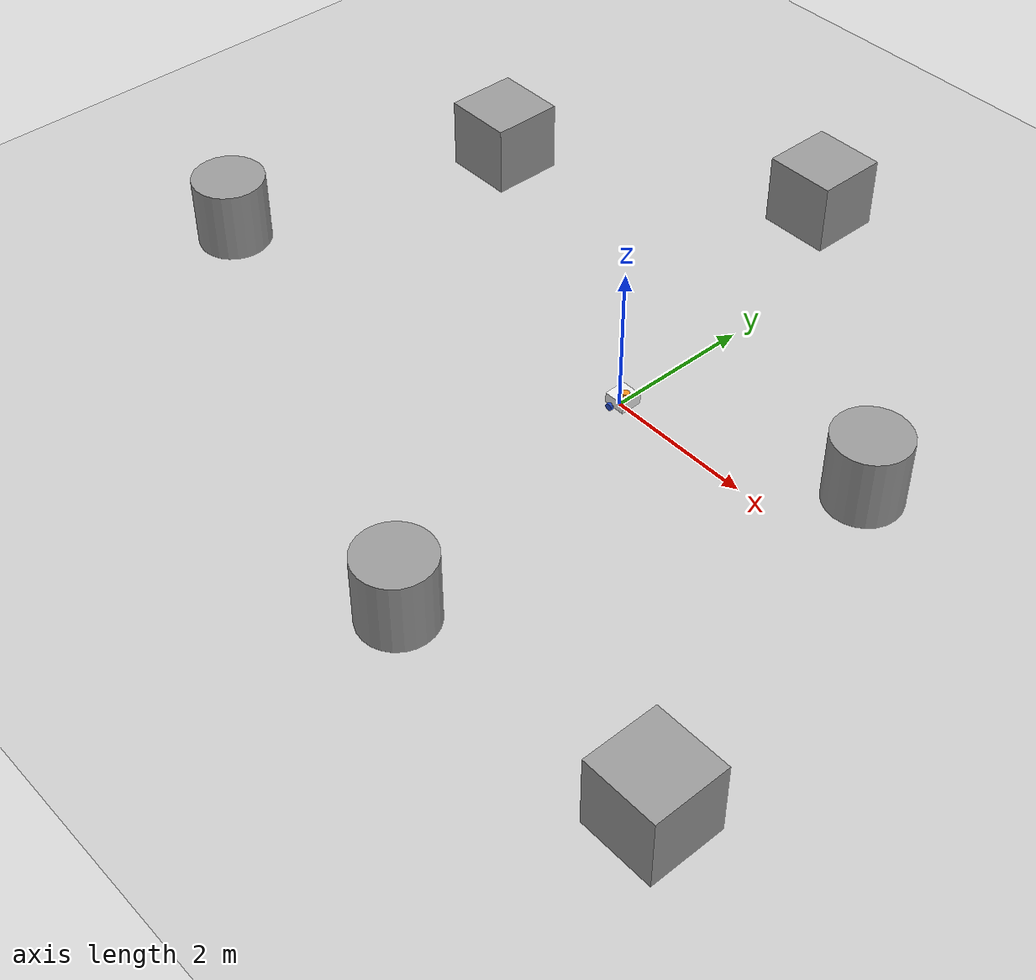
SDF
<sdf version="1.7">
 <world name="default">
  <light name="sun" type="directional">
   <pose>0 0 10 0 -0 0</pose>
   <diffuse>0.8 0.8 0.8 1</diffuse>
   <specular>0.2 0.2 0.2 1</specular>
   <attenuation>
    <range>1000</range>
    <constant>0.9</constant>
    <linear>0.01</linear>
    <quadratic>0.001</quadratic>
   </attenuation>
   <direction>-0.5 0.1 -0.9</direction>
   <spot><inner_angle>0</inner_angle><outer_angle>0</outer_angle><falloff>0</falloff></spot>
  </light>
  <model name="ground_plane">
   <static>1</static>
   <link name="link">
    <collision name="collision">
     <geometry><plane><normal>0 0 1</normal><size>100 100</size></plane></geometry>
     <surface>
      <contact><collide_bitmask>65535</collide_bitmask></contact>
      <friction><ode><mu>100</mu><mu2>50</mu2></ode></friction>
     </surface>
    </collision>
    <visual name="visual">
     <cast_shadows>0</cast_shadows>
     <geometry><plane><normal>0 0 1</normal><size>100 100</size></plane></geometry>
     <material>
      <script><uri>file://media/materials/scripts/gazebo.material</uri><name>Gazebo/Grey</name></script>
     </material>
    </visual>
   </link>
  </model>
  <gravity>0 0 -9.8</gravity>
  <magnetic_field>6e-06 2.3e-05 -4.2e-05</magnetic_field>
  <atmosphere type="adiabatic"/>
  <physics type="ode">
   <max_step_size>0.001</max_step_size>
   <real_time_factor>1</real_time_factor>
   <real_time_update_rate>1000</real_time_update_rate>
  </physics>
  <scene><ambient>0.4 0.4 0.4 1</ambient><background>0.7 0.7 0.7 1</background><shadows>1</shadows></scene>
  <audio><device>default</device></audio>
  <spherical_coordinates>
   <surface_model>EARTH_WGS84</surface_model>
   <latitude_deg>0</latitude_deg>
   <longitude_deg>0</longitude_deg>
   <elevation>0</elevation>
   <heading_deg>0</heading_deg>
  </spherical_coordinates>
  <model name="my_bot">
   <link name="base_link">
    <inertial>
     <pose>0.07 0 0.078571 0 -0 0</pose>
     <mass>0.7</mass>
     <inertia>
      <ixx>0.0064169</ixx>
      <ixy>0</ixy>
      <ixz>0.000225</ixz>
      <iyy>0.0071969</iyy>
      <iyz>0</iyz>
      <izz>0.00840083</izz>
     </inertia>
    </inertial>
    <collision name="base_link_fixed_joint_lump__castor_wheel_collision">
     <pose>0.14 0 0 0 -0 0</pose>
     <geometry><sphere><radius>0.05</radius></sphere></geometry>
     <surface><friction><ode><mu>0.001</mu><mu2>0.001</mu2></ode></friction></surface>
    </collision>
    <collision name="base_link_fixed_joint_lump__robot_chassis_collision_1">
     <pose>0.05 0 0.075 0 -0 0</pose>
     <geometry><box><size>0.3 0.3 0.15</size></box></geometry>
    </collision>
    <collision name="base_link_fixed_joint_lump__lidar_sensor_collision_2">
     <pose>0.1 0 0.175 0 -0 0</pose>
     <geometry><cylinder><length>0.04</length><radius>0.05</radius></cylinder></geometry>
    </collision>
    <visual name="base_link_fixed_joint_lump__castor_wheel_visual">
     <pose>0.14 0 0 0 -0 0</pose>
     <geometry><sphere><radius>0.05</radius></sphere></geometry>
     <material>
      <script><name>Gazebo/Black</name><uri>file://media/materials/scripts/gazebo.material</uri></script>
     </material>
    </visual>
    <visual name="base_link_fixed_joint_lump__robot_chassis_visual_1">
     <pose>0.05 0 0.075 0 -0 0</pose>
     <geometry><box><size>0.3 0.3 0.15</size></box></geometry>
     <material>
      <script><name>Gazebo/White</name><uri>file://media/materials/scripts/gazebo.material</uri></script>
     </material>
    </visual>
    <visual name="base_link_fixed_joint_lump__lidar_sensor_visual_2">
     <pose>0.1 0 0.175 0 -0 0</pose>
     <geometry><cylinder><length>0.04</length><radius>0.05</radius></cylinder></geometry>
     <material>
      <script><name>Gazebo/Orange</name><uri>file://media/materials/scripts/gazebo.material</uri></script>
     </material>
    </visual>
    <sensor name="laser" type="ray">
     <visualize>1</visualize>
     <update_rate>10</update_rate>
     <ray>
      <scan>
       <horizontal>
        <samples>360</samples>
        <min_angle>-3.14</min_angle>
        <max_angle>3.14</max_angle>
        <resolution>1</resolution>
       </horizontal>
       <vertical><samples>1</samples><min_angle>0</min_angle><max_angle>0</max_angle></vertical>
      </scan>
      <range><min>0.3</min><max>12</max></range>
     </ray>
     <plugin name="laser_controller" filename="libgazebo_ros_ray_sensor.so">
      <ros><argument>~/out:=scan</argument></ros>
      <output_type>sensor_msgs/LaserScan</output_type>
      <frame_name>laser_frame</frame_name>
     </plugin>
     <pose>0.1 0 0.175 0 -0 0</pose>
    </sensor>
   </link>
   <joint name="left_wheel_joint" type="revolute">
    <pose relative_to="base_link">0 0.175 0 -1.5708 0 0</pose>
    <parent>base_link</parent>
    <child>left_wheel</child>
    <axis>
     <xyz>0 0 1</xyz>
     <limit><lower>-1e+16</lower><upper>1e+16</upper></limit>
     <dynamics><spring_reference>0</spring_reference><spring_stiffness>0</spring_stiffness></dynamics>
    </axis>
   </joint>
   <link name="left_wheel">
    <pose relative_to="left_wheel_joint">0 0 0 0 -0 0</pose>
    <inertial>
     <mass>0.1</mass>
     <inertia>
      <ixx>7.58333e-05</ixx>
      <ixy>0</ixy>
      <ixz>0</ixz>
      <iyy>7.58333e-05</iyy>
      <iyz>0</iyz>
      <izz>2.08333e-05</izz>
     </inertia>
    </inertial>
    <collision name="left_wheel_collision">
     <geometry><cylinder><length>0.04</length><radius>0.05</radius></cylinder></geometry>
    </collision>
    <visual name="left_wheel_visual">
     <geometry><cylinder><length>0.04</length><radius>0.05</radius></cylinder></geometry>
     <material>
      <script><name>Gazebo/Blue</name><uri>file://media/materials/scripts/gazebo.material</uri></script>
     </material>
    </visual>
   </link>
   <joint name="right_wheel_joint" type="revolute">
    <pose relative_to="base_link">0 -0.175 0 1.5708 -0 0</pose>
    <parent>base_link</parent>
    <child>right_wheel</child>
    <axis>
     <xyz>0 0 -1</xyz>
     <limit><lower>-1e+16</lower><upper>1e+16</upper></limit>
     <dynamics><spring_reference>0</spring_reference><spring_stiffness>0</spring_stiffness></dynamics>
    </axis>
   </joint>
   <link name="right_wheel">
    <pose relative_to="right_wheel_joint">0 0 0 0 -0 0</pose>
    <inertial>
     <mass>0.1</mass>
     <inertia>
      <ixx>7.58333e-05</ixx>
      <ixy>0</ixy>
      <ixz>0</ixz>
      <iyy>7.58333e-05</iyy>
      <iyz>0</iyz>
      <izz>2.08333e-05</izz>
     </inertia>
    </inertial>
    <collision name="right_wheel_collision">
     <geometry><cylinder><length>0.04</length><radius>0.05</radius></cylinder></geometry>
    </collision>
    <visual name="right_wheel_visual">
     <geometry><cylinder><length>0.04</length><radius>0.05</radius></cylinder></geometry>
     <material>
      <script><name>Gazebo/Blue</name><uri>file://media/materials/scripts/gazebo.material</uri></script>
     </material>
    </visual>
   </link>
   <static>0</static>
   <plugin name="diff_drive" filename="libgazebo_ros_diff_drive.so">
    <left_joint>left_wheel_joint</left_joint>
    <right_joint>right_wheel_joint</right_joint>
    <wheel_separation>0.35</wheel_separation>
    <wheel_diameter>0.1</wheel_diameter>
    <max_wheel_torque>250</max_wheel_torque>
    <max_wheel_acceleration>10.0</max_wheel_acceleration>
    <odometry_frame>odom</odometry_frame>
    <robot_base_frame>base_link</robot_base_frame>
    <publish_odom>1</publish_odom>
    <publish_odom_tf>1</publish_odom_tf>
    <publish_wheel_tf>1</publish_wheel_tf>
   </plugin>
   <pose>-0.008934 0.000177 0.05 0 1.9e-05 0.004214</pose>
  </model>
  <model name="unit_cylinder">
   <pose>3.05702 0.989228 0.499998 3e-06 -4e-06 0</pose>
   <link name="link">
    <inertial>
     <mass>1</mass>
     <inertia><ixx>0.145833</ixx><ixy>0</ixy><ixz>0</ixz><iyy>0.145833</iyy><iyz>0</iyz><izz>0.125</izz></inertia>
    </inertial>
    <collision name="collision">
     <geometry><cylinder><radius>0.5</radius><length>1</length></cylinder></geometry>
    </collision>
    <visual name="visual">
     <geometry><cylinder><radius>0.5</radius><length>1</length></cylinder></geometry>
     <material>
      <script><name>Gazebo/Grey</name><uri>file://media/materials/scripts/gazebo.material</uri></script>
     </material>
    </visual>
   </link>
  </model>
  <model name="unit_cylinder_0">
   <pose>0.920787 -4.21993 0.499992 -3e-06 -4e-06 -0</pose>
   <link name="link">
    <inertial>
     <mass>1</mass>
     <inertia><ixx>0.145833</ixx><ixy>0</ixy><ixz>0</ixz><iyy>0.145833</iyy><iyz>0</iyz><izz>0.125</izz></inertia>
    </inertial>
    <collision name="collision">
     <geometry><cylinder><radius>0.5</radius><length>1</length></cylinder></geometry>
    </collision>
    <visual name="visual">
     <geometry><cylinder><radius>0.5</radius><length>1</length></cylinder></geometry>
     <material>
      <script><name>Gazebo/Grey</name><uri>file://media/materials/scripts/gazebo.material</uri></script>
     </material>
    </visual>
   </link>
  </model>
  <model name="unit_box">
   <pose>-4.83468 2.30669 0.499995 -1e-05 -0 -0</pose>
   <link name="link">
    <inertial>
     <mass>1</mass>
     <inertia>
      <ixx>0.166667</ixx>
      <ixy>0</ixy>
      <ixz>0</ixz>
      <iyy>0.166667</iyy>
      <iyz>0</iyz>
      <izz>0.166667</izz>
     </inertia>
    </inertial>
    <collision name="collision"><geometry><box><size>1 1 1</size></box></geometry></collision>
    <visual name="visual">
     <geometry><box><size>1 1 1</size></box></geometry>
     <material>
      <script><name>Gazebo/Grey</name><uri>file://media/materials/scripts/gazebo.material</uri></script>
     </material>
    </visual>
   </link>
  </model>
  <model name="unit_box_0">
   <pose>-0.942501 4.65471 0.499995 0 1e-05 0</pose>
   <link name="link">
    <inertial>
     <mass>1</mass>
     <inertia>
      <ixx>0.166667</ixx>
      <ixy>0</ixy>
      <ixz>0</ixz>
      <iyy>0.166667</iyy>
      <iyz>0</iyz>
      <izz>0.166667</izz>
     </inertia>
    </inertial>
    <collision name="collision"><geometry><box><size>1 1 1</size></box></geometry></collision>
    <visual name="visual">
     <geometry><box><size>1 1 1</size></box></geometry>
     <material>
      <script><name>Gazebo/Grey</name><uri>file://media/materials/scripts/gazebo.material</uri></script>
     </material>
    </visual>
   </link>
  </model>
  <model name="unit_box_1">
   <pose>4.69116 -4.03463 0.499995 -1e-05 -0 0</pose>
   <link name="link">
    <inertial>
     <mass>1</mass>
     <inertia>
      <ixx>0.166667</ixx>
      <ixy>0</ixy>
      <ixz>0</ixz>
      <iyy>0.166667</iyy>
      <iyz>0</iyz>
      <izz>0.166667</izz>
     </inertia>
    </inertial>
    <collision name="collision"><geometry><box><size>1 1 1</size></box></geometry></collision>
    <visual name="visual">
     <geometry><box><size>1 1 1</size></box></geometry>
     <material>
      <script><name>Gazebo/Grey</name><uri>file://media/materials/scripts/gazebo.material</uri></script>
     </material>
    </visual>
   </link>
  </model>
  <model name="unit_cylinder_1">
   <pose>-5.94928 -1.60091 0.499997 3e-06 4e-06 -0</pose>
   <link name="link">
    <inertial>
     <mass>1</mass>
     <inertia><ixx>0.145833</ixx><ixy>0</ixy><ixz>0</ixz><iyy>0.145833</iyy><iyz>0</iyz><izz>0.125</izz></inertia>
    </inertial>
    <collision name="collision">
     <geometry><cylinder><radius>0.5</radius><length>1</length></cylinder></geometry>
    </collision>
    <visual name="visual">
     <geometry><cylinder><radius>0.5</radius><length>1</length></cylinder></geometry>
     <material>
      <script><name>Gazebo/Grey</name><uri>file://media/materials/scripts/gazebo.material</uri></script>
     </material>
    </visual>
   </link>
  </model>
 </world>
</sdf>
